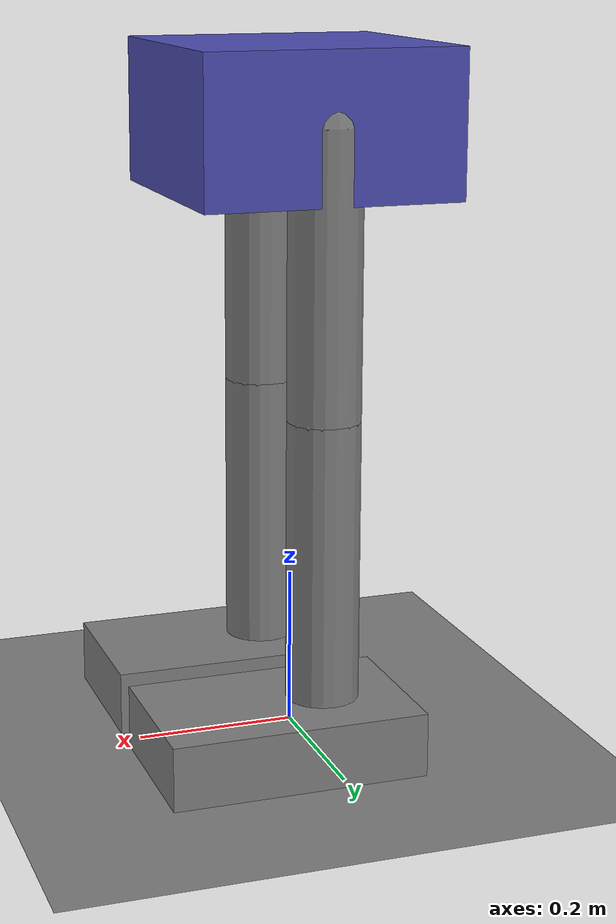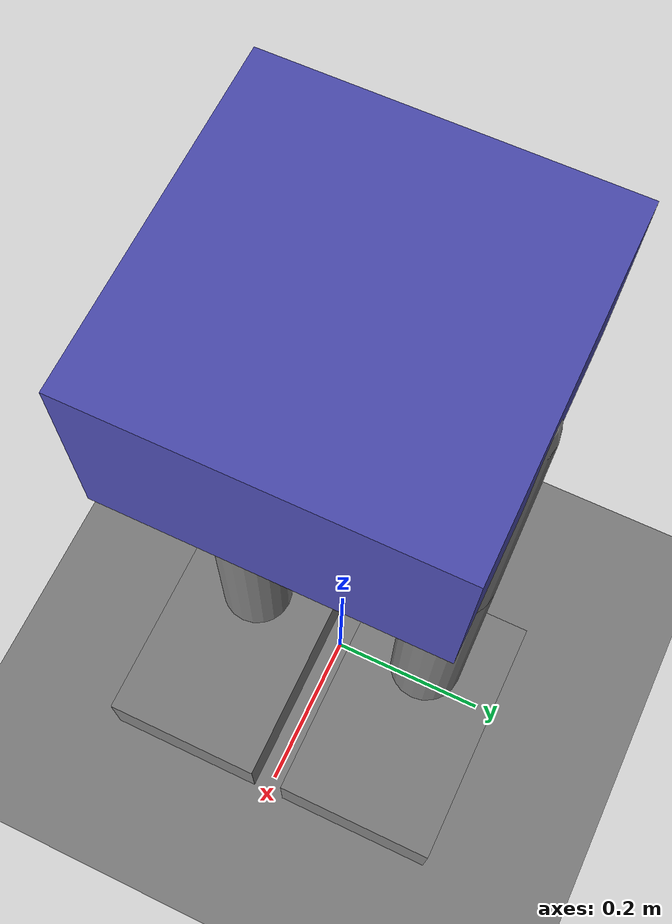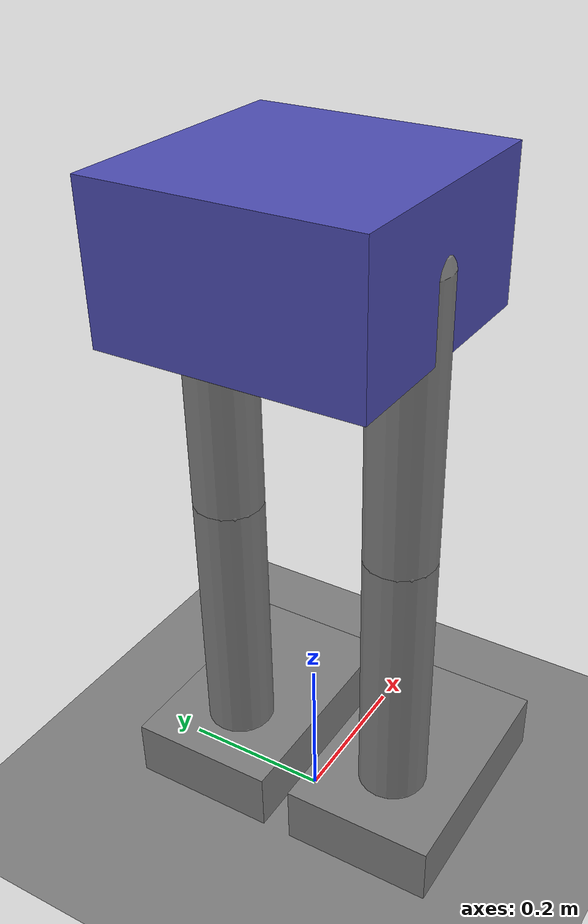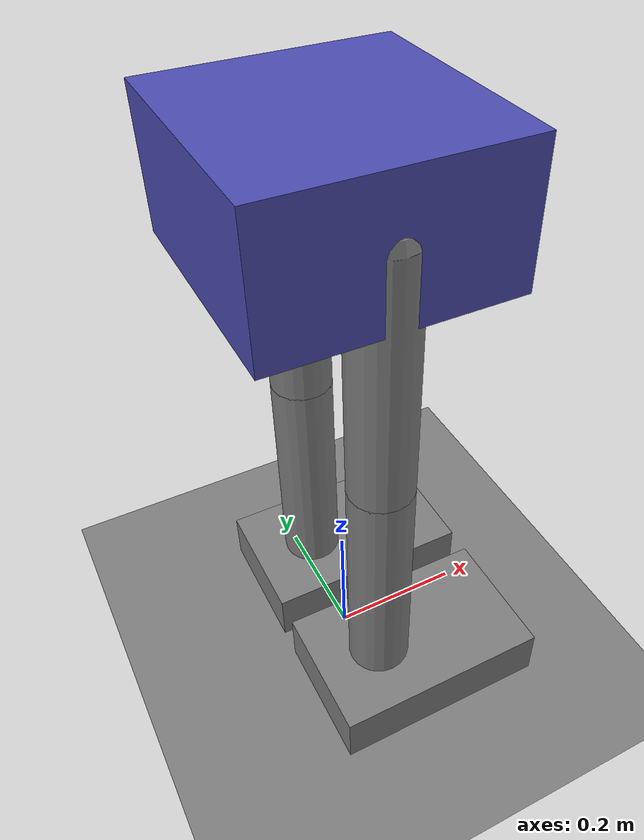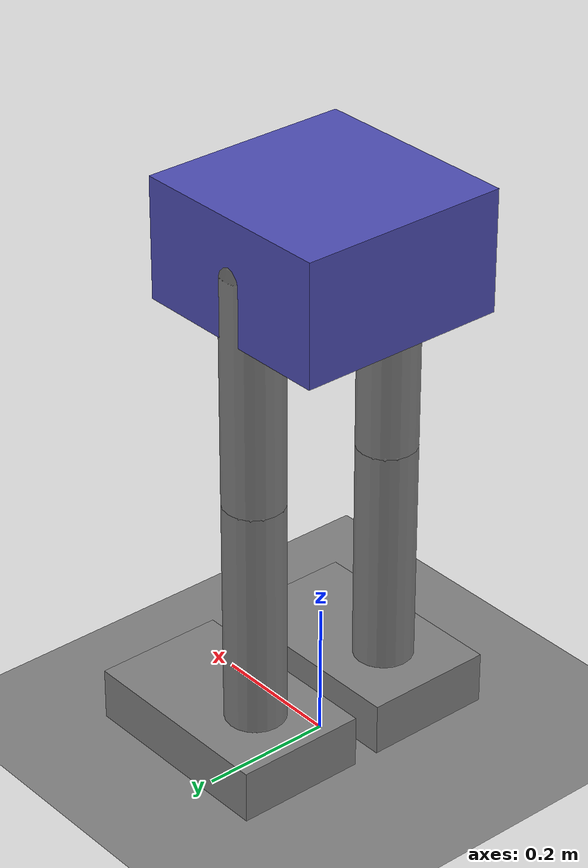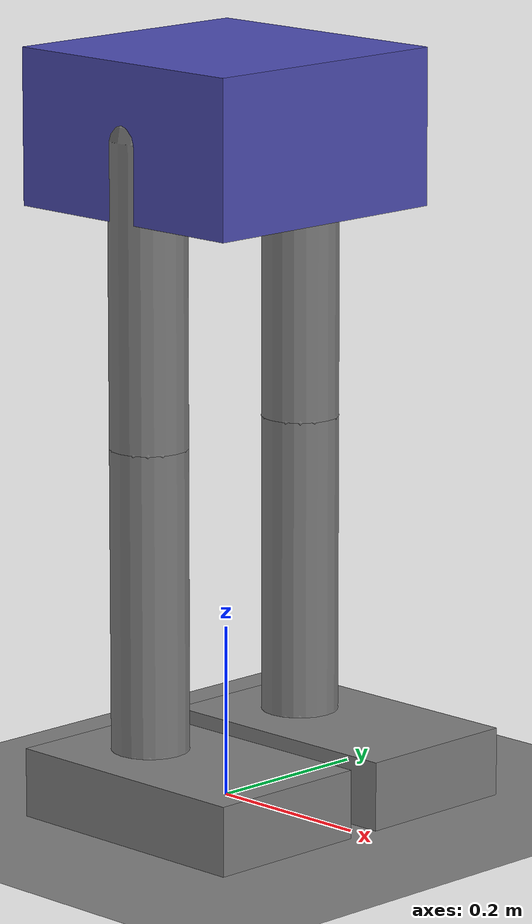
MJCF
<mujoco model="floating biped standing">
  <option timestep="0.001" integrator="implicitfast" solver="Newton"/>
  <default>
    <joint damping="1" armature=".03" limited="true" range="-60 60"/>
    <geom type="capsule" size=".045" mass="1" friction="1 .01 .001"/>
    <position kp="120" kv="12" ctrlrange="-1 1" ctrllimited="true" forcerange="-80 80" forcelimited="true"/>
  </default>
  <worldbody>
    <geom name="floor" type="plane" size="3 3 .1" mass="0" friction="1 .01 .001"/>
    <body name="pelvis" pos="0 0 .78">
      <freejoint/><geom type="box" size=".16 .16 .09" mass="8" rgba=".3 .3 .7 1"/>
      <body name="left_thigh" pos="0 .12 0">
        <joint name="left_hip_roll" axis="1 0 0"/><joint name="left_hip_pitch" axis="0 1 0"/>
        <geom fromto="0 0 0 0 0 -.35" mass="2"/>
        <body name="left_shin" pos="0 0 -.35"><joint name="left_knee" axis="0 1 0" range="-5 100"/>
          <geom fromto="0 0 0 0 0 -.35" mass="1.5"/>
          <body name="left_foot" pos="0 0 -.35">
            <joint name="left_ankle_pitch" axis="0 1 0"/><joint name="left_ankle_roll" axis="1 0 0"/>
            <geom name="left_foot_geom" type="box" pos=".06 0 -.04" size=".16 .10 .04" mass="1"/>
          </body>
        </body>
      </body>
      <body name="right_thigh" pos="0 -.12 0">
        <joint name="right_hip_roll" axis="1 0 0"/><joint name="right_hip_pitch" axis="0 1 0"/>
        <geom fromto="0 0 0 0 0 -.35" mass="2"/>
        <body name="right_shin" pos="0 0 -.35"><joint name="right_knee" axis="0 1 0" range="-5 100"/>
          <geom fromto="0 0 0 0 0 -.35" mass="1.5"/>
          <body name="right_foot" pos="0 0 -.35">
            <joint name="right_ankle_pitch" axis="0 1 0"/><joint name="right_ankle_roll" axis="1 0 0"/>
            <geom name="right_foot_geom" type="box" pos=".06 0 -.04" size=".16 .10 .04" mass="1"/>
          </body>
        </body>
      </body>
    </body>
  </worldbody>
  <actuator>
    <position joint="left_hip_roll"/><position joint="left_hip_pitch"/><position joint="left_knee"/>
    <position joint="left_ankle_pitch"/><position joint="left_ankle_roll"/>
    <position joint="right_hip_roll"/><position joint="right_hip_pitch"/><position joint="right_knee"/>
    <position joint="right_ankle_pitch"/><position joint="right_ankle_roll"/>
  </actuator>
</mujoco>
